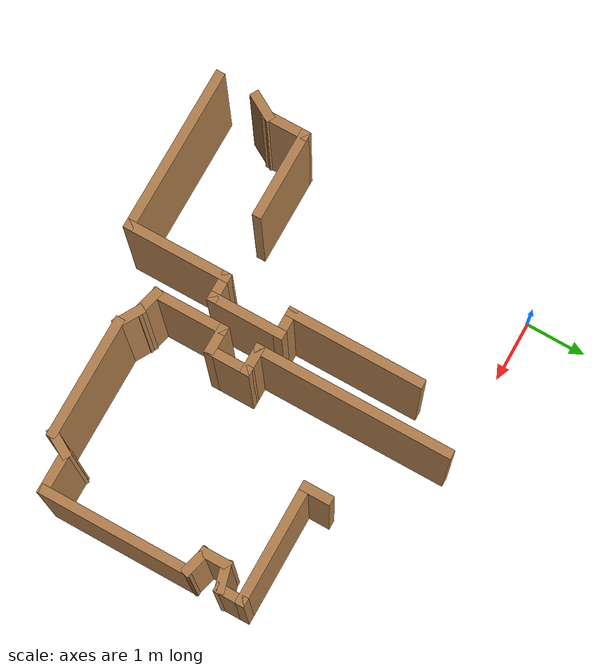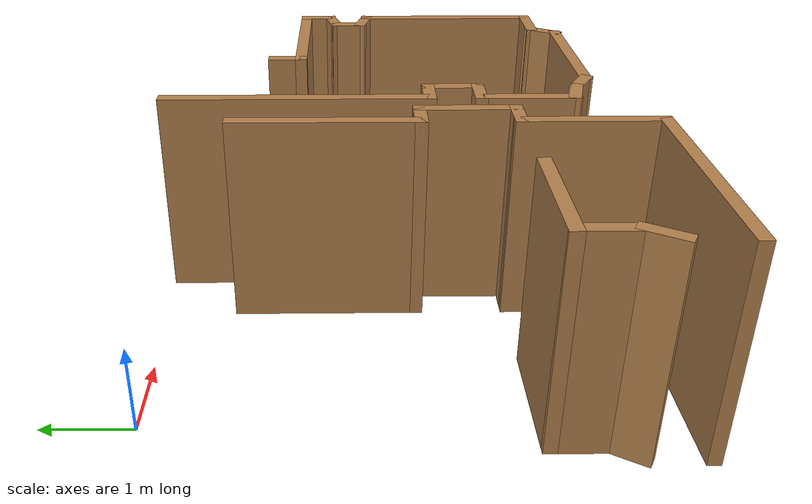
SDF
<sdf version="1.6">
 <model name="map_30">
  <link name="Wall_191">
   <pose>0.350366 -4.11681 0 0 -0 0</pose>
   <visual name="Wall_191_Visual">
    <pose>0 0 1.25 0 -0 0</pose>
    <geometry><box><size>1.5 0.15 2.5</size></box></geometry>
    <material>
     <script><uri>file://media/materials/scripts/gazebo.material</uri><name>Gazebo/Wood</name></script>
     <ambient>1 1 1 1</ambient>
     <shader type="pixel"/>
    </material>
    <meta><layer>0</layer></meta>
   </visual>
   <collision name="Wall_191_Collision">
    <pose>0 0 1.25 0 -0 0</pose>
    <geometry><box><size>1.5 0.15 2.5</size></box></geometry>
    <surface>
     <friction>
      <ode><mu>1</mu><mu2>1</mu2><fdir1>0 0 0</fdir1><slip1>0</slip1><slip2>0</slip2></ode>
      <torsional>
       <coefficient>1</coefficient>
       <patch_radius>0</patch_radius>
       <surface_radius>0</surface_radius>
       <use_patch_radius>1</use_patch_radius>
       <ode><slip>0</slip></ode>
      </torsional>
     </friction>
     <bounce><restitution_coefficient>0</restitution_coefficient><threshold>1e+06</threshold></bounce>
     <contact>
      <collide_without_contact>0</collide_without_contact>
      <collide_without_contact_bitmask>1</collide_without_contact_bitmask>
      <collide_bitmask>1</collide_bitmask>
      <ode>
       <soft_cfm>0</soft_cfm>
       <soft_erp>0.2</soft_erp>
       <kp>1e+13</kp>
       <kd>1</kd>
       <max_vel>0.01</max_vel>
       <min_depth>0</min_depth>
      </ode>
      <bullet>
       <split_impulse>1</split_impulse>
       <split_impulse_penetration_threshold>-0.01</split_impulse_penetration_threshold>
       <soft_cfm>0</soft_cfm>
       <soft_erp>0.2</soft_erp>
       <kp>1e+13</kp>
       <kd>1</kd>
      </bullet>
     </contact>
    </surface>
   </collision>
  </link>
  <link name="Wall_56">
   <pose>-0.324634 -4.41681 0 0 0 -1.5708</pose>
   <visual name="Wall_56_Visual">
    <pose>0 0 1.25 0 -0 0</pose>
    <geometry><box><size>0.75 0.15 2.5</size></box></geometry>
    <material>
     <script><uri>file://media/materials/scripts/gazebo.material</uri><name>Gazebo/Wood</name></script>
     <ambient>1 1 1 1</ambient>
     <shader type="pixel"/>
    </material>
    <meta><layer>0</layer></meta>
   </visual>
   <collision name="Wall_56_Collision">
    <pose>0 0 1.25 0 -0 0</pose>
    <geometry><box><size>0.75 0.15 2.5</size></box></geometry>
    <surface>
     <friction>
      <ode><mu>1</mu><mu2>1</mu2><fdir1>0 0 0</fdir1><slip1>0</slip1><slip2>0</slip2></ode>
      <torsional>
       <coefficient>1</coefficient>
       <patch_radius>0</patch_radius>
       <surface_radius>0</surface_radius>
       <use_patch_radius>1</use_patch_radius>
       <ode><slip>0</slip></ode>
      </torsional>
     </friction>
     <bounce><restitution_coefficient>0</restitution_coefficient><threshold>1e+06</threshold></bounce>
     <contact>
      <collide_without_contact>0</collide_without_contact>
      <collide_without_contact_bitmask>1</collide_without_contact_bitmask>
      <collide_bitmask>1</collide_bitmask>
      <ode>
       <soft_cfm>0</soft_cfm>
       <soft_erp>0.2</soft_erp>
       <kp>1e+13</kp>
       <kd>1</kd>
       <max_vel>0.01</max_vel>
       <min_depth>0</min_depth>
      </ode>
      <bullet>
       <split_impulse>1</split_impulse>
       <split_impulse_penetration_threshold>-0.01</split_impulse_penetration_threshold>
       <soft_cfm>0</soft_cfm>
       <soft_erp>0.2</soft_erp>
       <kp>1e+13</kp>
       <kd>1</kd>
      </bullet>
     </contact>
    </surface>
   </collision>
  </link>
  <link name="Wall_59">
   <pose>-0.412134 -4.86837 0 0 0 -2.0944</pose>
   <visual name="Wall_59_Visual">
    <pose>0 0 1.25 0 -0 0</pose>
    <geometry><box><size>0.5 0.15 2.5</size></box></geometry>
    <material>
     <script><uri>file://media/materials/scripts/gazebo.material</uri><name>Gazebo/Wood</name></script>
     <ambient>1 1 1 1</ambient>
     <shader type="pixel"/>
    </material>
    <meta><layer>0</layer></meta>
   </visual>
   <collision name="Wall_59_Collision">
    <pose>0 0 1.25 0 -0 0</pose>
    <geometry><box><size>0.5 0.15 2.5</size></box></geometry>
    <surface>
     <friction>
      <ode><mu>1</mu><mu2>1</mu2><fdir1>0 0 0</fdir1><slip1>0</slip1><slip2>0</slip2></ode>
      <torsional>
       <coefficient>1</coefficient>
       <patch_radius>0</patch_radius>
       <surface_radius>0</surface_radius>
       <use_patch_radius>1</use_patch_radius>
       <ode><slip>0</slip></ode>
      </torsional>
     </friction>
     <bounce><restitution_coefficient>0</restitution_coefficient><threshold>1e+06</threshold></bounce>
     <contact>
      <collide_without_contact>0</collide_without_contact>
      <collide_without_contact_bitmask>1</collide_without_contact_bitmask>
      <collide_bitmask>1</collide_bitmask>
      <ode>
       <soft_cfm>0</soft_cfm>
       <soft_erp>0.2</soft_erp>
       <kp>1e+13</kp>
       <kd>1</kd>
       <max_vel>0.01</max_vel>
       <min_depth>0</min_depth>
      </ode>
      <bullet>
       <split_impulse>1</split_impulse>
       <split_impulse_penetration_threshold>-0.01</split_impulse_penetration_threshold>
       <soft_cfm>0</soft_cfm>
       <soft_erp>0.2</soft_erp>
       <kp>1e+13</kp>
       <kd>1</kd>
      </bullet>
     </contact>
    </surface>
   </collision>
  </link>
  <link name="Wall_67">
   <pose>0.800366 -5.66618 0 0 -0 0</pose>
   <visual name="Wall_67_Visual">
    <pose>0 0 1.25 0 -0 0</pose>
    <geometry><box><size>2.75 0.15 2.5</size></box></geometry>
    <material>
     <script><uri>file://media/materials/scripts/gazebo.material</uri><name>Gazebo/Wood</name></script>
     <ambient>1 1 1 1</ambient>
     <shader type="pixel"/>
    </material>
    <meta><layer>0</layer></meta>
   </visual>
   <collision name="Wall_67_Collision">
    <pose>0 0 1.25 0 -0 0</pose>
    <geometry><box><size>2.75 0.15 2.5</size></box></geometry>
    <surface>
     <friction>
      <ode><mu>1</mu><mu2>1</mu2><fdir1>0 0 0</fdir1><slip1>0</slip1><slip2>0</slip2></ode>
      <torsional>
       <coefficient>1</coefficient>
       <patch_radius>0</patch_radius>
       <surface_radius>0</surface_radius>
       <use_patch_radius>1</use_patch_radius>
       <ode><slip>0</slip></ode>
      </torsional>
     </friction>
     <bounce><restitution_coefficient>0</restitution_coefficient><threshold>1e+06</threshold></bounce>
     <contact>
      <collide_without_contact>0</collide_without_contact>
      <collide_without_contact_bitmask>1</collide_without_contact_bitmask>
      <collide_bitmask>1</collide_bitmask>
      <ode>
       <soft_cfm>0</soft_cfm>
       <soft_erp>0.2</soft_erp>
       <kp>1e+13</kp>
       <kd>1</kd>
       <max_vel>0.01</max_vel>
       <min_depth>0</min_depth>
      </ode>
      <bullet>
       <split_impulse>1</split_impulse>
       <split_impulse_penetration_threshold>-0.01</split_impulse_penetration_threshold>
       <soft_cfm>0</soft_cfm>
       <soft_erp>0.2</soft_erp>
       <kp>1e+13</kp>
       <kd>1</kd>
      </bullet>
     </contact>
    </surface>
   </collision>
  </link>
  <link name="Wall_68">
   <pose>2.10037 -4.86618 0 0 -0 1.5708</pose>
   <visual name="Wall_68_Visual">
    <pose>0 0 1.25 0 -0 0</pose>
    <geometry><box><size>1.75 0.15 2.5</size></box></geometry>
    <material>
     <script><uri>file://media/materials/scripts/gazebo.material</uri><name>Gazebo/Wood</name></script>
     <ambient>1 1 1 1</ambient>
     <shader type="pixel"/>
    </material>
    <meta><layer>0</layer></meta>
   </visual>
   <collision name="Wall_68_Collision">
    <pose>0 0 1.25 0 -0 0</pose>
    <geometry><box><size>1.75 0.15 2.5</size></box></geometry>
    <surface>
     <friction>
      <ode><mu>1</mu><mu2>1</mu2><fdir1>0 0 0</fdir1><slip1>0</slip1><slip2>0</slip2></ode>
      <torsional>
       <coefficient>1</coefficient>
       <patch_radius>0</patch_radius>
       <surface_radius>0</surface_radius>
       <use_patch_radius>1</use_patch_radius>
       <ode><slip>0</slip></ode>
      </torsional>
     </friction>
     <bounce><restitution_coefficient>0</restitution_coefficient><threshold>1e+06</threshold></bounce>
     <contact>
      <collide_without_contact>0</collide_without_contact>
      <collide_without_contact_bitmask>1</collide_without_contact_bitmask>
      <collide_bitmask>1</collide_bitmask>
      <ode>
       <soft_cfm>0</soft_cfm>
       <soft_erp>0.2</soft_erp>
       <kp>1e+13</kp>
       <kd>1</kd>
       <max_vel>0.01</max_vel>
       <min_depth>0</min_depth>
      </ode>
      <bullet>
       <split_impulse>1</split_impulse>
       <split_impulse_penetration_threshold>-0.01</split_impulse_penetration_threshold>
       <soft_cfm>0</soft_cfm>
       <soft_erp>0.2</soft_erp>
       <kp>1e+13</kp>
       <kd>1</kd>
      </bullet>
     </contact>
    </surface>
   </collision>
  </link>
  <link name="Wall_69">
   <pose>2.27537 -4.06618 0 0 -0 0</pose>
   <visual name="Wall_69_Visual">
    <pose>0 0 1.25 0 -0 0</pose>
    <geometry><box><size>0.5 0.15 2.5</size></box></geometry>
    <material>
     <script><uri>file://media/materials/scripts/gazebo.material</uri><name>Gazebo/Wood</name></script>
     <ambient>1 1 1 1</ambient>
     <shader type="pixel"/>
    </material>
    <meta><layer>0</layer></meta>
   </visual>
   <collision name="Wall_69_Collision">
    <pose>0 0 1.25 0 -0 0</pose>
    <geometry><box><size>0.5 0.15 2.5</size></box></geometry>
    <surface>
     <friction>
      <ode><mu>1</mu><mu2>1</mu2><fdir1>0 0 0</fdir1><slip1>0</slip1><slip2>0</slip2></ode>
      <torsional>
       <coefficient>1</coefficient>
       <patch_radius>0</patch_radius>
       <surface_radius>0</surface_radius>
       <use_patch_radius>1</use_patch_radius>
       <ode><slip>0</slip></ode>
      </torsional>
     </friction>
     <bounce><restitution_coefficient>0</restitution_coefficient><threshold>1e+06</threshold></bounce>
     <contact>
      <collide_without_contact>0</collide_without_contact>
      <collide_without_contact_bitmask>1</collide_without_contact_bitmask>
      <collide_bitmask>1</collide_bitmask>
      <ode>
       <soft_cfm>0</soft_cfm>
       <soft_erp>0.2</soft_erp>
       <kp>1e+13</kp>
       <kd>1</kd>
       <max_vel>0.01</max_vel>
       <min_depth>0</min_depth>
      </ode>
      <bullet>
       <split_impulse>1</split_impulse>
       <split_impulse_penetration_threshold>-0.01</split_impulse_penetration_threshold>
       <soft_cfm>0</soft_cfm>
       <soft_erp>0.2</soft_erp>
       <kp>1e+13</kp>
       <kd>1</kd>
      </bullet>
     </contact>
    </surface>
   </collision>
  </link>
  <link name="Wall_70">
   <pose>2.45037 -3.51618 0 0 -0 1.5708</pose>
   <visual name="Wall_70_Visual">
    <pose>0 0 1.25 0 -0 0</pose>
    <geometry><box><size>1.25 0.15 2.5</size></box></geometry>
    <material>
     <script><uri>file://media/materials/scripts/gazebo.material</uri><name>Gazebo/Wood</name></script>
     <ambient>1 1 1 1</ambient>
     <shader type="pixel"/>
    </material>
    <meta><layer>0</layer></meta>
   </visual>
   <collision name="Wall_70_Collision">
    <pose>0 0 1.25 0 -0 0</pose>
    <geometry><box><size>1.25 0.15 2.5</size></box></geometry>
    <surface>
     <friction>
      <ode><mu>1</mu><mu2>1</mu2><fdir1>0 0 0</fdir1><slip1>0</slip1><slip2>0</slip2></ode>
      <torsional>
       <coefficient>1</coefficient>
       <patch_radius>0</patch_radius>
       <surface_radius>0</surface_radius>
       <use_patch_radius>1</use_patch_radius>
       <ode><slip>0</slip></ode>
      </torsional>
     </friction>
     <bounce><restitution_coefficient>0</restitution_coefficient><threshold>1e+06</threshold></bounce>
     <contact>
      <collide_without_contact>0</collide_without_contact>
      <collide_without_contact_bitmask>1</collide_without_contact_bitmask>
      <collide_bitmask>1</collide_bitmask>
      <ode>
       <soft_cfm>0</soft_cfm>
       <soft_erp>0.2</soft_erp>
       <kp>1e+13</kp>
       <kd>1</kd>
       <max_vel>0.01</max_vel>
       <min_depth>0</min_depth>
      </ode>
      <bullet>
       <split_impulse>1</split_impulse>
       <split_impulse_penetration_threshold>-0.01</split_impulse_penetration_threshold>
       <soft_cfm>0</soft_cfm>
       <soft_erp>0.2</soft_erp>
       <kp>1e+13</kp>
       <kd>1</kd>
      </bullet>
     </contact>
    </surface>
   </collision>
  </link>
  <link name="Wall_71">
   <pose>2.27537 -2.96618 0 0 -0 3.14159</pose>
   <visual name="Wall_71_Visual">
    <pose>0 0 1.25 0 -0 0</pose>
    <geometry><box><size>0.5 0.15 2.5</size></box></geometry>
    <material>
     <script><uri>file://media/materials/scripts/gazebo.material</uri><name>Gazebo/Wood</name></script>
     <ambient>1 1 1 1</ambient>
     <shader type="pixel"/>
    </material>
    <meta><layer>0</layer></meta>
   </visual>
   <collision name="Wall_71_Collision">
    <pose>0 0 1.25 0 -0 0</pose>
    <geometry><box><size>0.5 0.15 2.5</size></box></geometry>
    <surface>
     <friction>
      <ode><mu>1</mu><mu2>1</mu2><fdir1>0 0 0</fdir1><slip1>0</slip1><slip2>0</slip2></ode>
      <torsional>
       <coefficient>1</coefficient>
       <patch_radius>0</patch_radius>
       <surface_radius>0</surface_radius>
       <use_patch_radius>1</use_patch_radius>
       <ode><slip>0</slip></ode>
      </torsional>
     </friction>
     <bounce><restitution_coefficient>0</restitution_coefficient><threshold>1e+06</threshold></bounce>
     <contact>
      <collide_without_contact>0</collide_without_contact>
      <collide_without_contact_bitmask>1</collide_without_contact_bitmask>
      <collide_bitmask>1</collide_bitmask>
      <ode>
       <soft_cfm>0</soft_cfm>
       <soft_erp>0.2</soft_erp>
       <kp>1e+13</kp>
       <kd>1</kd>
       <max_vel>0.01</max_vel>
       <min_depth>0</min_depth>
      </ode>
      <bullet>
       <split_impulse>1</split_impulse>
       <split_impulse_penetration_threshold>-0.01</split_impulse_penetration_threshold>
       <soft_cfm>0</soft_cfm>
       <soft_erp>0.2</soft_erp>
       <kp>1e+13</kp>
       <kd>1</kd>
      </bullet>
     </contact>
    </surface>
   </collision>
  </link>
  <link name="Wall_72">
   <pose>2.10037 -1.91618 0 0 -0 1.5708</pose>
   <visual name="Wall_72_Visual">
    <pose>0 0 1.25 0 -0 0</pose>
    <geometry><box><size>2.25 0.15 2.5</size></box></geometry>
    <material>
     <script><uri>file://media/materials/scripts/gazebo.material</uri><name>Gazebo/Wood</name></script>
     <ambient>1 1 1 1</ambient>
     <shader type="pixel"/>
    </material>
    <meta><layer>0</layer></meta>
   </visual>
   <collision name="Wall_72_Collision">
    <pose>0 0 1.25 0 -0 0</pose>
    <geometry><box><size>2.25 0.15 2.5</size></box></geometry>
    <surface>
     <friction>
      <ode><mu>1</mu><mu2>1</mu2><fdir1>0 0 0</fdir1><slip1>0</slip1><slip2>0</slip2></ode>
      <torsional>
       <coefficient>1</coefficient>
       <patch_radius>0</patch_radius>
       <surface_radius>0</surface_radius>
       <use_patch_radius>1</use_patch_radius>
       <ode><slip>0</slip></ode>
      </torsional>
     </friction>
     <bounce><restitution_coefficient>0</restitution_coefficient><threshold>1e+06</threshold></bounce>
     <contact>
      <collide_without_contact>0</collide_without_contact>
      <collide_without_contact_bitmask>1</collide_without_contact_bitmask>
      <collide_bitmask>1</collide_bitmask>
      <ode>
       <soft_cfm>0</soft_cfm>
       <soft_erp>0.2</soft_erp>
       <kp>1e+13</kp>
       <kd>1</kd>
       <max_vel>0.01</max_vel>
       <min_depth>0</min_depth>
      </ode>
      <bullet>
       <split_impulse>1</split_impulse>
       <split_impulse_penetration_threshold>-0.01</split_impulse_penetration_threshold>
       <soft_cfm>0</soft_cfm>
       <soft_erp>0.2</soft_erp>
       <kp>1e+13</kp>
       <kd>1</kd>
      </bullet>
     </contact>
    </surface>
   </collision>
  </link>
  <link name="Wall_76">
   <pose>2.80037 -1.56618 0 0 0 -1.5708</pose>
   <visual name="Wall_76_Visual">
    <pose>0 0 1.25 0 -0 0</pose>
    <geometry><box><size>3.25 0.15 2.5</size></box></geometry>
    <material>
     <script><uri>file://media/materials/scripts/gazebo.material</uri><name>Gazebo/Wood</name></script>
     <ambient>1 1 1 1</ambient>
     <shader type="pixel"/>
    </material>
    <meta><layer>0</layer></meta>
   </visual>
   <collision name="Wall_76_Collision">
    <pose>0 0 1.25 0 -0 0</pose>
    <geometry><box><size>3.25 0.15 2.5</size></box></geometry>
    <surface>
     <friction>
      <ode><mu>1</mu><mu2>1</mu2><fdir1>0 0 0</fdir1><slip1>0</slip1><slip2>0</slip2></ode>
      <torsional>
       <coefficient>1</coefficient>
       <patch_radius>0</patch_radius>
       <surface_radius>0</surface_radius>
       <use_patch_radius>1</use_patch_radius>
       <ode><slip>0</slip></ode>
      </torsional>
     </friction>
     <bounce><restitution_coefficient>0</restitution_coefficient><threshold>1e+06</threshold></bounce>
     <contact>
      <collide_without_contact>0</collide_without_contact>
      <collide_without_contact_bitmask>1</collide_without_contact_bitmask>
      <collide_bitmask>1</collide_bitmask>
      <ode>
       <soft_cfm>0</soft_cfm>
       <soft_erp>0.2</soft_erp>
       <kp>1e+13</kp>
       <kd>1</kd>
       <max_vel>0.01</max_vel>
       <min_depth>0</min_depth>
      </ode>
      <bullet>
       <split_impulse>1</split_impulse>
       <split_impulse_penetration_threshold>-0.01</split_impulse_penetration_threshold>
       <soft_cfm>0</soft_cfm>
       <soft_erp>0.2</soft_erp>
       <kp>1e+13</kp>
       <kd>1</kd>
      </bullet>
     </contact>
    </surface>
   </collision>
  </link>
  <link name="Wall_77">
   <pose>2.97537 -3.11618 0 0 -0 0</pose>
   <visual name="Wall_77_Visual">
    <pose>0 0 1.25 0 -0 0</pose>
    <geometry><box><size>0.5 0.15 2.5</size></box></geometry>
    <material>
     <script><uri>file://media/materials/scripts/gazebo.material</uri><name>Gazebo/Wood</name></script>
     <ambient>1 1 1 1</ambient>
     <shader type="pixel"/>
    </material>
    <meta><layer>0</layer></meta>
   </visual>
   <collision name="Wall_77_Collision">
    <pose>0 0 1.25 0 -0 0</pose>
    <geometry><box><size>0.5 0.15 2.5</size></box></geometry>
    <surface>
     <friction>
      <ode><mu>1</mu><mu2>1</mu2><fdir1>0 0 0</fdir1><slip1>0</slip1><slip2>0</slip2></ode>
      <torsional>
       <coefficient>1</coefficient>
       <patch_radius>0</patch_radius>
       <surface_radius>0</surface_radius>
       <use_patch_radius>1</use_patch_radius>
       <ode><slip>0</slip></ode>
      </torsional>
     </friction>
     <bounce><restitution_coefficient>0</restitution_coefficient><threshold>1e+06</threshold></bounce>
     <contact>
      <collide_without_contact>0</collide_without_contact>
      <collide_without_contact_bitmask>1</collide_without_contact_bitmask>
      <collide_bitmask>1</collide_bitmask>
      <ode>
       <soft_cfm>0</soft_cfm>
       <soft_erp>0.2</soft_erp>
       <kp>1e+13</kp>
       <kd>1</kd>
       <max_vel>0.01</max_vel>
       <min_depth>0</min_depth>
      </ode>
      <bullet>
       <split_impulse>1</split_impulse>
       <split_impulse_penetration_threshold>-0.01</split_impulse_penetration_threshold>
       <soft_cfm>0</soft_cfm>
       <soft_erp>0.2</soft_erp>
       <kp>1e+13</kp>
       <kd>1</kd>
      </bullet>
     </contact>
    </surface>
   </collision>
  </link>
  <link name="Wall_84">
   <pose>3.15037 -3.41618 0 0 0 -1.5708</pose>
   <visual name="Wall_84_Visual">
    <pose>0 0 1.25 0 -0 0</pose>
    <geometry><box><size>0.75 0.15 2.5</size></box></geometry>
    <material>
     <script><uri>file://media/materials/scripts/gazebo.material</uri><name>Gazebo/Wood</name></script>
     <ambient>1 1 1 1</ambient>
     <shader type="pixel"/>
    </material>
    <meta><layer>0</layer></meta>
   </visual>
   <collision name="Wall_84_Collision">
    <pose>0 0 1.25 0 -0 0</pose>
    <geometry><box><size>0.75 0.15 2.5</size></box></geometry>
    <surface>
     <friction>
      <ode><mu>1</mu><mu2>1</mu2><fdir1>0 0 0</fdir1><slip1>0</slip1><slip2>0</slip2></ode>
      <torsional>
       <coefficient>1</coefficient>
       <patch_radius>0</patch_radius>
       <surface_radius>0</surface_radius>
       <use_patch_radius>1</use_patch_radius>
       <ode><slip>0</slip></ode>
      </torsional>
     </friction>
     <bounce><restitution_coefficient>0</restitution_coefficient><threshold>1e+06</threshold></bounce>
     <contact>
      <collide_without_contact>0</collide_without_contact>
      <collide_without_contact_bitmask>1</collide_without_contact_bitmask>
      <collide_bitmask>1</collide_bitmask>
      <ode>
       <soft_cfm>0</soft_cfm>
       <soft_erp>0.2</soft_erp>
       <kp>1e+13</kp>
       <kd>1</kd>
       <max_vel>0.01</max_vel>
       <min_depth>0</min_depth>
      </ode>
      <bullet>
       <split_impulse>1</split_impulse>
       <split_impulse_penetration_threshold>-0.01</split_impulse_penetration_threshold>
       <soft_cfm>0</soft_cfm>
       <soft_erp>0.2</soft_erp>
       <kp>1e+13</kp>
       <kd>1</kd>
      </bullet>
     </contact>
    </surface>
   </collision>
  </link>
  <link name="Wall_85">
   <pose>2.97537 -3.71618 0 0 -0 3.14159</pose>
   <visual name="Wall_85_Visual">
    <pose>0 0 1.25 0 -0 0</pose>
    <geometry><box><size>0.5 0.15 2.5</size></box></geometry>
    <material>
     <script><uri>file://media/materials/scripts/gazebo.material</uri><name>Gazebo/Wood</name></script>
     <ambient>1 1 1 1</ambient>
     <shader type="pixel"/>
    </material>
    <meta><layer>0</layer></meta>
   </visual>
   <collision name="Wall_85_Collision">
    <pose>0 0 1.25 0 -0 0</pose>
    <geometry><box><size>0.5 0.15 2.5</size></box></geometry>
    <surface>
     <friction>
      <ode><mu>1</mu><mu2>1</mu2><fdir1>0 0 0</fdir1><slip1>0</slip1><slip2>0</slip2></ode>
      <torsional>
       <coefficient>1</coefficient>
       <patch_radius>0</patch_radius>
       <surface_radius>0</surface_radius>
       <use_patch_radius>1</use_patch_radius>
       <ode><slip>0</slip></ode>
      </torsional>
     </friction>
     <bounce><restitution_coefficient>0</restitution_coefficient><threshold>1e+06</threshold></bounce>
     <contact>
      <collide_without_contact>0</collide_without_contact>
      <collide_without_contact_bitmask>1</collide_without_contact_bitmask>
      <collide_bitmask>1</collide_bitmask>
      <ode>
       <soft_cfm>0</soft_cfm>
       <soft_erp>0.2</soft_erp>
       <kp>1e+13</kp>
       <kd>1</kd>
       <max_vel>0.01</max_vel>
       <min_depth>0</min_depth>
      </ode>
      <bullet>
       <split_impulse>1</split_impulse>
       <split_impulse_penetration_threshold>-0.01</split_impulse_penetration_threshold>
       <soft_cfm>0</soft_cfm>
       <soft_erp>0.2</soft_erp>
       <kp>1e+13</kp>
       <kd>1</kd>
      </bullet>
     </contact>
    </surface>
   </collision>
  </link>
  <link name="Wall_86">
   <pose>2.80037 -4.26618 0 0 0 -1.5708</pose>
   <visual name="Wall_86_Visual">
    <pose>0 0 1.25 0 -0 0</pose>
    <geometry><box><size>1.25 0.15 2.5</size></box></geometry>
    <material>
     <script><uri>file://media/materials/scripts/gazebo.material</uri><name>Gazebo/Wood</name></script>
     <ambient>1 1 1 1</ambient>
     <shader type="pixel"/>
    </material>
    <meta><layer>0</layer></meta>
   </visual>
   <collision name="Wall_86_Collision">
    <pose>0 0 1.25 0 -0 0</pose>
    <geometry><box><size>1.25 0.15 2.5</size></box></geometry>
    <surface>
     <friction>
      <ode><mu>1</mu><mu2>1</mu2><fdir1>0 0 0</fdir1><slip1>0</slip1><slip2>0</slip2></ode>
      <torsional>
       <coefficient>1</coefficient>
       <patch_radius>0</patch_radius>
       <surface_radius>0</surface_radius>
       <use_patch_radius>1</use_patch_radius>
       <ode><slip>0</slip></ode>
      </torsional>
     </friction>
     <bounce><restitution_coefficient>0</restitution_coefficient><threshold>1e+06</threshold></bounce>
     <contact>
      <collide_without_contact>0</collide_without_contact>
      <collide_without_contact_bitmask>1</collide_without_contact_bitmask>
      <collide_bitmask>1</collide_bitmask>
      <ode>
       <soft_cfm>0</soft_cfm>
       <soft_erp>0.2</soft_erp>
       <kp>1e+13</kp>
       <kd>1</kd>
       <max_vel>0.01</max_vel>
       <min_depth>0</min_depth>
      </ode>
      <bullet>
       <split_impulse>1</split_impulse>
       <split_impulse_penetration_threshold>-0.01</split_impulse_penetration_threshold>
       <soft_cfm>0</soft_cfm>
       <soft_erp>0.2</soft_erp>
       <kp>1e+13</kp>
       <kd>1</kd>
      </bullet>
     </contact>
    </surface>
   </collision>
  </link>
  <link name="Wall_87">
   <pose>2.9694 -4.86148 0 0 0 -0.261799</pose>
   <visual name="Wall_87_Visual">
    <pose>0 0 1.25 0 -0 0</pose>
    <geometry><box><size>0.5 0.15 2.5</size></box></geometry>
    <material>
     <script><uri>file://media/materials/scripts/gazebo.material</uri><name>Gazebo/Wood</name></script>
     <ambient>1 1 1 1</ambient>
     <shader type="pixel"/>
    </material>
    <meta><layer>0</layer></meta>
   </visual>
   <collision name="Wall_87_Collision">
    <pose>0 0 1.25 0 -0 0</pose>
    <geometry><box><size>0.5 0.15 2.5</size></box></geometry>
    <surface>
     <friction>
      <ode><mu>1</mu><mu2>1</mu2><fdir1>0 0 0</fdir1><slip1>0</slip1><slip2>0</slip2></ode>
      <torsional>
       <coefficient>1</coefficient>
       <patch_radius>0</patch_radius>
       <surface_radius>0</surface_radius>
       <use_patch_radius>1</use_patch_radius>
       <ode><slip>0</slip></ode>
      </torsional>
     </friction>
     <bounce><restitution_coefficient>0</restitution_coefficient><threshold>1e+06</threshold></bounce>
     <contact>
      <collide_without_contact>0</collide_without_contact>
      <collide_without_contact_bitmask>1</collide_without_contact_bitmask>
      <collide_bitmask>1</collide_bitmask>
      <ode>
       <soft_cfm>0</soft_cfm>
       <soft_erp>0.2</soft_erp>
       <kp>1e+13</kp>
       <kd>1</kd>
       <max_vel>0.01</max_vel>
       <min_depth>0</min_depth>
      </ode>
      <bullet>
       <split_impulse>1</split_impulse>
       <split_impulse_penetration_threshold>-0.01</split_impulse_penetration_threshold>
       <soft_cfm>0</soft_cfm>
       <soft_erp>0.2</soft_erp>
       <kp>1e+13</kp>
       <kd>1</kd>
      </bullet>
     </contact>
    </surface>
   </collision>
  </link>
  <link name="Wall_88">
   <pose>3.28999 -4.99427 0 0 0 -0.523599</pose>
   <visual name="Wall_88_Visual">
    <pose>0 0 1.25 0 -0 0</pose>
    <geometry><box><size>0.5 0.15 2.5</size></box></geometry>
    <material>
     <script><uri>file://media/materials/scripts/gazebo.material</uri><name>Gazebo/Wood</name></script>
     <ambient>1 1 1 1</ambient>
     <shader type="pixel"/>
    </material>
    <meta><layer>0</layer></meta>
   </visual>
   <collision name="Wall_88_Collision">
    <pose>0 0 1.25 0 -0 0</pose>
    <geometry><box><size>0.5 0.15 2.5</size></box></geometry>
    <surface>
     <friction>
      <ode><mu>1</mu><mu2>1</mu2><fdir1>0 0 0</fdir1><slip1>0</slip1><slip2>0</slip2></ode>
      <torsional>
       <coefficient>1</coefficient>
       <patch_radius>0</patch_radius>
       <surface_radius>0</surface_radius>
       <use_patch_radius>1</use_patch_radius>
       <ode><slip>0</slip></ode>
      </torsional>
     </friction>
     <bounce><restitution_coefficient>0</restitution_coefficient><threshold>1e+06</threshold></bounce>
     <contact>
      <collide_without_contact>0</collide_without_contact>
      <collide_without_contact_bitmask>1</collide_without_contact_bitmask>
      <collide_bitmask>1</collide_bitmask>
      <ode>
       <soft_cfm>0</soft_cfm>
       <soft_erp>0.2</soft_erp>
       <kp>1e+13</kp>
       <kd>1</kd>
       <max_vel>0.01</max_vel>
       <min_depth>0</min_depth>
      </ode>
      <bullet>
       <split_impulse>1</split_impulse>
       <split_impulse_penetration_threshold>-0.01</split_impulse_penetration_threshold>
       <soft_cfm>0</soft_cfm>
       <soft_erp>0.2</soft_erp>
       <kp>1e+13</kp>
       <kd>1</kd>
      </bullet>
     </contact>
    </surface>
   </collision>
  </link>
  <link name="Wall_89">
   <pose>4.36655 -5.08177 0 0 -0 0</pose>
   <visual name="Wall_89_Visual">
    <pose>0 0 1.25 0 -0 0</pose>
    <geometry><box><size>2 0.15 2.5</size></box></geometry>
    <material>
     <script><uri>file://media/materials/scripts/gazebo.material</uri><name>Gazebo/Wood</name></script>
     <ambient>1 1 1 1</ambient>
     <shader type="pixel"/>
    </material>
    <meta><layer>0</layer></meta>
   </visual>
   <collision name="Wall_89_Collision">
    <pose>0 0 1.25 0 -0 0</pose>
    <geometry><box><size>2 0.15 2.5</size></box></geometry>
    <surface>
     <friction>
      <ode><mu>1</mu><mu2>1</mu2><fdir1>0 0 0</fdir1><slip1>0</slip1><slip2>0</slip2></ode>
      <torsional>
       <coefficient>1</coefficient>
       <patch_radius>0</patch_radius>
       <surface_radius>0</surface_radius>
       <use_patch_radius>1</use_patch_radius>
       <ode><slip>0</slip></ode>
      </torsional>
     </friction>
     <bounce><restitution_coefficient>0</restitution_coefficient><threshold>1e+06</threshold></bounce>
     <contact>
      <collide_without_contact>0</collide_without_contact>
      <collide_without_contact_bitmask>1</collide_without_contact_bitmask>
      <collide_bitmask>1</collide_bitmask>
      <ode>
       <soft_cfm>0</soft_cfm>
       <soft_erp>0.2</soft_erp>
       <kp>1e+13</kp>
       <kd>1</kd>
       <max_vel>0.01</max_vel>
       <min_depth>0</min_depth>
      </ode>
      <bullet>
       <split_impulse>1</split_impulse>
       <split_impulse_penetration_threshold>-0.01</split_impulse_penetration_threshold>
       <soft_cfm>0</soft_cfm>
       <soft_erp>0.2</soft_erp>
       <kp>1e+13</kp>
       <kd>1</kd>
      </bullet>
     </contact>
    </surface>
   </collision>
  </link>
  <link name="Wall_90">
   <pose>5.37905 -4.93021 0 0 -0 1.0472</pose>
   <visual name="Wall_90_Visual">
    <pose>0 0 1.25 0 -0 0</pose>
    <geometry><box><size>0.5 0.15 2.5</size></box></geometry>
    <material>
     <script><uri>file://media/materials/scripts/gazebo.material</uri><name>Gazebo/Wood</name></script>
     <ambient>1 1 1 1</ambient>
     <shader type="pixel"/>
    </material>
    <meta><layer>0</layer></meta>
   </visual>
   <collision name="Wall_90_Collision">
    <pose>0 0 1.25 0 -0 0</pose>
    <geometry><box><size>0.5 0.15 2.5</size></box></geometry>
    <surface>
     <friction>
      <ode><mu>1</mu><mu2>1</mu2><fdir1>0 0 0</fdir1><slip1>0</slip1><slip2>0</slip2></ode>
      <torsional>
       <coefficient>1</coefficient>
       <patch_radius>0</patch_radius>
       <surface_radius>0</surface_radius>
       <use_patch_radius>1</use_patch_radius>
       <ode><slip>0</slip></ode>
      </torsional>
     </friction>
     <bounce><restitution_coefficient>0</restitution_coefficient><threshold>1e+06</threshold></bounce>
     <contact>
      <collide_without_contact>0</collide_without_contact>
      <collide_without_contact_bitmask>1</collide_without_contact_bitmask>
      <collide_bitmask>1</collide_bitmask>
      <ode>
       <soft_cfm>0</soft_cfm>
       <soft_erp>0.2</soft_erp>
       <kp>1e+13</kp>
       <kd>1</kd>
       <max_vel>0.01</max_vel>
       <min_depth>0</min_depth>
      </ode>
      <bullet>
       <split_impulse>1</split_impulse>
       <split_impulse_penetration_threshold>-0.01</split_impulse_penetration_threshold>
       <soft_cfm>0</soft_cfm>
       <soft_erp>0.2</soft_erp>
       <kp>1e+13</kp>
       <kd>1</kd>
      </bullet>
     </contact>
    </surface>
   </collision>
  </link>
  <link name="Wall_91">
   <pose>5.76655 -4.77866 0 0 -0 0</pose>
   <visual name="Wall_91_Visual">
    <pose>0 0 1.25 0 -0 0</pose>
    <geometry><box><size>0.75 0.15 2.5</size></box></geometry>
    <material>
     <script><uri>file://media/materials/scripts/gazebo.material</uri><name>Gazebo/Wood</name></script>
     <ambient>1 1 1 1</ambient>
     <shader type="pixel"/>
    </material>
    <meta><layer>0</layer></meta>
   </visual>
   <collision name="Wall_91_Collision">
    <pose>0 0 1.25 0 -0 0</pose>
    <geometry><box><size>0.75 0.15 2.5</size></box></geometry>
    <surface>
     <friction>
      <ode><mu>1</mu><mu2>1</mu2><fdir1>0 0 0</fdir1><slip1>0</slip1><slip2>0</slip2></ode>
      <torsional>
       <coefficient>1</coefficient>
       <patch_radius>0</patch_radius>
       <surface_radius>0</surface_radius>
       <use_patch_radius>1</use_patch_radius>
       <ode><slip>0</slip></ode>
      </torsional>
     </friction>
     <bounce><restitution_coefficient>0</restitution_coefficient><threshold>1e+06</threshold></bounce>
     <contact>
      <collide_without_contact>0</collide_without_contact>
      <collide_without_contact_bitmask>1</collide_without_contact_bitmask>
      <collide_bitmask>1</collide_bitmask>
      <ode>
       <soft_cfm>0</soft_cfm>
       <soft_erp>0.2</soft_erp>
       <kp>1e+13</kp>
       <kd>1</kd>
       <max_vel>0.01</max_vel>
       <min_depth>0</min_depth>
      </ode>
      <bullet>
       <split_impulse>1</split_impulse>
       <split_impulse_penetration_threshold>-0.01</split_impulse_penetration_threshold>
       <soft_cfm>0</soft_cfm>
       <soft_erp>0.2</soft_erp>
       <kp>1e+13</kp>
       <kd>1</kd>
      </bullet>
     </contact>
    </surface>
   </collision>
  </link>
  <link name="Wall_92">
   <pose>6.06655 -3.60366 0 0 -0 1.5708</pose>
   <visual name="Wall_92_Visual">
    <pose>0 0 1.25 0 -0 0</pose>
    <geometry><box><size>2.5 0.15 2.5</size></box></geometry>
    <material>
     <script><uri>file://media/materials/scripts/gazebo.material</uri><name>Gazebo/Wood</name></script>
     <ambient>1 1 1 1</ambient>
     <shader type="pixel"/>
    </material>
    <meta><layer>0</layer></meta>
   </visual>
   <collision name="Wall_92_Collision">
    <pose>0 0 1.25 0 -0 0</pose>
    <geometry><box><size>2.5 0.15 2.5</size></box></geometry>
    <surface>
     <friction>
      <ode><mu>1</mu><mu2>1</mu2><fdir1>0 0 0</fdir1><slip1>0</slip1><slip2>0</slip2></ode>
      <torsional>
       <coefficient>1</coefficient>
       <patch_radius>0</patch_radius>
       <surface_radius>0</surface_radius>
       <use_patch_radius>1</use_patch_radius>
       <ode><slip>0</slip></ode>
      </torsional>
     </friction>
     <bounce><restitution_coefficient>0</restitution_coefficient><threshold>1e+06</threshold></bounce>
     <contact>
      <collide_without_contact>0</collide_without_contact>
      <collide_without_contact_bitmask>1</collide_without_contact_bitmask>
      <collide_bitmask>1</collide_bitmask>
      <ode>
       <soft_cfm>0</soft_cfm>
       <soft_erp>0.2</soft_erp>
       <kp>1e+13</kp>
       <kd>1</kd>
       <max_vel>0.01</max_vel>
       <min_depth>0</min_depth>
      </ode>
      <bullet>
       <split_impulse>1</split_impulse>
       <split_impulse_penetration_threshold>-0.01</split_impulse_penetration_threshold>
       <soft_cfm>0</soft_cfm>
       <soft_erp>0.2</soft_erp>
       <kp>1e+13</kp>
       <kd>1</kd>
      </bullet>
     </contact>
    </surface>
   </collision>
  </link>
  <link name="Wall_93">
   <pose>5.89751 -2.38337 0 0 -0 2.87979</pose>
   <visual name="Wall_93_Visual">
    <pose>0 0 1.25 0 -0 0</pose>
    <geometry><box><size>0.5 0.15 2.5</size></box></geometry>
    <material>
     <script><uri>file://media/materials/scripts/gazebo.material</uri><name>Gazebo/Wood</name></script>
     <ambient>1 1 1 1</ambient>
     <shader type="pixel"/>
    </material>
    <meta><layer>0</layer></meta>
   </visual>
   <collision name="Wall_93_Collision">
    <pose>0 0 1.25 0 -0 0</pose>
    <geometry><box><size>0.5 0.15 2.5</size></box></geometry>
    <surface>
     <friction>
      <ode><mu>1</mu><mu2>1</mu2><fdir1>0 0 0</fdir1><slip1>0</slip1><slip2>0</slip2></ode>
      <torsional>
       <coefficient>1</coefficient>
       <patch_radius>0</patch_radius>
       <surface_radius>0</surface_radius>
       <use_patch_radius>1</use_patch_radius>
       <ode><slip>0</slip></ode>
      </torsional>
     </friction>
     <bounce><restitution_coefficient>0</restitution_coefficient><threshold>1e+06</threshold></bounce>
     <contact>
      <collide_without_contact>0</collide_without_contact>
      <collide_without_contact_bitmask>1</collide_without_contact_bitmask>
      <collide_bitmask>1</collide_bitmask>
      <ode>
       <soft_cfm>0</soft_cfm>
       <soft_erp>0.2</soft_erp>
       <kp>1e+13</kp>
       <kd>1</kd>
       <max_vel>0.01</max_vel>
       <min_depth>0</min_depth>
      </ode>
      <bullet>
       <split_impulse>1</split_impulse>
       <split_impulse_penetration_threshold>-0.01</split_impulse_penetration_threshold>
       <soft_cfm>0</soft_cfm>
       <soft_erp>0.2</soft_erp>
       <kp>1e+13</kp>
       <kd>1</kd>
      </bullet>
     </contact>
    </surface>
   </collision>
  </link>
  <link name="Wall_94">
   <pose>5.72848 -2.16307 0 0 -0 1.5708</pose>
   <visual name="Wall_94_Visual">
    <pose>0 0 1.25 0 -0 0</pose>
    <geometry><box><size>0.5 0.15 2.5</size></box></geometry>
    <material>
     <script><uri>file://media/materials/scripts/gazebo.material</uri><name>Gazebo/Wood</name></script>
     <ambient>1 1 1 1</ambient>
     <shader type="pixel"/>
    </material>
    <meta><layer>0</layer></meta>
   </visual>
   <collision name="Wall_94_Collision">
    <pose>0 0 1.25 0 -0 0</pose>
    <geometry><box><size>0.5 0.15 2.5</size></box></geometry>
    <surface>
     <friction>
      <ode><mu>1</mu><mu2>1</mu2><fdir1>0 0 0</fdir1><slip1>0</slip1><slip2>0</slip2></ode>
      <torsional>
       <coefficient>1</coefficient>
       <patch_radius>0</patch_radius>
       <surface_radius>0</surface_radius>
       <use_patch_radius>1</use_patch_radius>
       <ode><slip>0</slip></ode>
      </torsional>
     </friction>
     <bounce><restitution_coefficient>0</restitution_coefficient><threshold>1e+06</threshold></bounce>
     <contact>
      <collide_without_contact>0</collide_without_contact>
      <collide_without_contact_bitmask>1</collide_without_contact_bitmask>
      <collide_bitmask>1</collide_bitmask>
      <ode>
       <soft_cfm>0</soft_cfm>
       <soft_erp>0.2</soft_erp>
       <kp>1e+13</kp>
       <kd>1</kd>
       <max_vel>0.01</max_vel>
       <min_depth>0</min_depth>
      </ode>
      <bullet>
       <split_impulse>1</split_impulse>
       <split_impulse_penetration_threshold>-0.01</split_impulse_penetration_threshold>
       <soft_cfm>0</soft_cfm>
       <soft_erp>0.2</soft_erp>
       <kp>1e+13</kp>
       <kd>1</kd>
      </bullet>
     </contact>
    </surface>
   </collision>
  </link>
  <link name="Wall_95">
   <pose>5.89751 -1.94278 0 0 -0 0.261799</pose>
   <visual name="Wall_95_Visual">
    <pose>0 0 1.25 0 -0 0</pose>
    <geometry><box><size>0.5 0.15 2.5</size></box></geometry>
    <material>
     <script><uri>file://media/materials/scripts/gazebo.material</uri><name>Gazebo/Wood</name></script>
     <ambient>1 1 1 1</ambient>
     <shader type="pixel"/>
    </material>
    <meta><layer>0</layer></meta>
   </visual>
   <collision name="Wall_95_Collision">
    <pose>0 0 1.25 0 -0 0</pose>
    <geometry><box><size>0.5 0.15 2.5</size></box></geometry>
    <surface>
     <friction>
      <ode><mu>1</mu><mu2>1</mu2><fdir1>0 0 0</fdir1><slip1>0</slip1><slip2>0</slip2></ode>
      <torsional>
       <coefficient>1</coefficient>
       <patch_radius>0</patch_radius>
       <surface_radius>0</surface_radius>
       <use_patch_radius>1</use_patch_radius>
       <ode><slip>0</slip></ode>
      </torsional>
     </friction>
     <bounce><restitution_coefficient>0</restitution_coefficient><threshold>1e+06</threshold></bounce>
     <contact>
      <collide_without_contact>0</collide_without_contact>
      <collide_without_contact_bitmask>1</collide_without_contact_bitmask>
      <collide_bitmask>1</collide_bitmask>
      <ode>
       <soft_cfm>0</soft_cfm>
       <soft_erp>0.2</soft_erp>
       <kp>1e+13</kp>
       <kd>1</kd>
       <max_vel>0.01</max_vel>
       <min_depth>0</min_depth>
      </ode>
      <bullet>
       <split_impulse>1</split_impulse>
       <split_impulse_penetration_threshold>-0.01</split_impulse_penetration_threshold>
       <soft_cfm>0</soft_cfm>
       <soft_erp>0.2</soft_erp>
       <kp>1e+13</kp>
       <kd>1</kd>
      </bullet>
     </contact>
    </surface>
   </collision>
  </link>
  <link name="Wall_96">
   <pose>6.06655 -1.72249 0 0 -0 1.5708</pose>
   <visual name="Wall_96_Visual">
    <pose>0 0 1.25 0 -0 0</pose>
    <geometry><box><size>0.5 0.15 2.5</size></box></geometry>
    <material>
     <script><uri>file://media/materials/scripts/gazebo.material</uri><name>Gazebo/Wood</name></script>
     <ambient>1 1 1 1</ambient>
     <shader type="pixel"/>
    </material>
    <meta><layer>0</layer></meta>
   </visual>
   <collision name="Wall_96_Collision">
    <pose>0 0 1.25 0 -0 0</pose>
    <geometry><box><size>0.5 0.15 2.5</size></box></geometry>
    <surface>
     <friction>
      <ode><mu>1</mu><mu2>1</mu2><fdir1>0 0 0</fdir1><slip1>0</slip1><slip2>0</slip2></ode>
      <torsional>
       <coefficient>1</coefficient>
       <patch_radius>0</patch_radius>
       <surface_radius>0</surface_radius>
       <use_patch_radius>1</use_patch_radius>
       <ode><slip>0</slip></ode>
      </torsional>
     </friction>
     <bounce><restitution_coefficient>0</restitution_coefficient><threshold>1e+06</threshold></bounce>
     <contact>
      <collide_without_contact>0</collide_without_contact>
      <collide_without_contact_bitmask>1</collide_without_contact_bitmask>
      <collide_bitmask>1</collide_bitmask>
      <ode>
       <soft_cfm>0</soft_cfm>
       <soft_erp>0.2</soft_erp>
       <kp>1e+13</kp>
       <kd>1</kd>
       <max_vel>0.01</max_vel>
       <min_depth>0</min_depth>
      </ode>
      <bullet>
       <split_impulse>1</split_impulse>
       <split_impulse_penetration_threshold>-0.01</split_impulse_penetration_threshold>
       <soft_cfm>0</soft_cfm>
       <soft_erp>0.2</soft_erp>
       <kp>1e+13</kp>
       <kd>1</kd>
      </bullet>
     </contact>
    </surface>
   </collision>
  </link>
  <link name="Wall_97">
   <pose>5.14155 -1.54749 0 0 -0 3.14159</pose>
   <visual name="Wall_97_Visual">
    <pose>0 0 1.25 0 -0 0</pose>
    <geometry><box><size>2 0.15 2.5</size></box></geometry>
    <material>
     <script><uri>file://media/materials/scripts/gazebo.material</uri><name>Gazebo/Wood</name></script>
     <ambient>1 1 1 1</ambient>
     <shader type="pixel"/>
    </material>
    <meta><layer>0</layer></meta>
   </visual>
   <collision name="Wall_97_Collision">
    <pose>0 0 1.25 0 -0 0</pose>
    <geometry><box><size>2 0.15 2.5</size></box></geometry>
    <surface>
     <friction>
      <ode><mu>1</mu><mu2>1</mu2><fdir1>0 0 0</fdir1><slip1>0</slip1><slip2>0</slip2></ode>
      <torsional>
       <coefficient>1</coefficient>
       <patch_radius>0</patch_radius>
       <surface_radius>0</surface_radius>
       <use_patch_radius>1</use_patch_radius>
       <ode><slip>0</slip></ode>
      </torsional>
     </friction>
     <bounce><restitution_coefficient>0</restitution_coefficient><threshold>1e+06</threshold></bounce>
     <contact>
      <collide_without_contact>0</collide_without_contact>
      <collide_without_contact_bitmask>1</collide_without_contact_bitmask>
      <collide_bitmask>1</collide_bitmask>
      <ode>
       <soft_cfm>0</soft_cfm>
       <soft_erp>0.2</soft_erp>
       <kp>1e+13</kp>
       <kd>1</kd>
       <max_vel>0.01</max_vel>
       <min_depth>0</min_depth>
      </ode>
      <bullet>
       <split_impulse>1</split_impulse>
       <split_impulse_penetration_threshold>-0.01</split_impulse_penetration_threshold>
       <soft_cfm>0</soft_cfm>
       <soft_erp>0.2</soft_erp>
       <kp>1e+13</kp>
       <kd>1</kd>
      </bullet>
     </contact>
    </surface>
   </collision>
  </link>
  <link name="Wall_98">
   <pose>4.21655 -1.37249 0 0 -0 1.5708</pose>
   <visual name="Wall_98_Visual">
    <pose>0 0 1.25 0 -0 0</pose>
    <geometry><box><size>0.5 0.15 2.5</size></box></geometry>
    <material>
     <script><uri>file://media/materials/scripts/gazebo.material</uri><name>Gazebo/Wood</name></script>
     <ambient>1 1 1 1</ambient>
     <shader type="pixel"/>
    </material>
    <meta><layer>0</layer></meta>
   </visual>
   <collision name="Wall_98_Collision">
    <pose>0 0 1.25 0 -0 0</pose>
    <geometry><box><size>0.5 0.15 2.5</size></box></geometry>
    <surface>
     <friction>
      <ode><mu>1</mu><mu2>1</mu2><fdir1>0 0 0</fdir1><slip1>0</slip1><slip2>0</slip2></ode>
      <torsional>
       <coefficient>1</coefficient>
       <patch_radius>0</patch_radius>
       <surface_radius>0</surface_radius>
       <use_patch_radius>1</use_patch_radius>
       <ode><slip>0</slip></ode>
      </torsional>
     </friction>
     <bounce><restitution_coefficient>0</restitution_coefficient><threshold>1e+06</threshold></bounce>
     <contact>
      <collide_without_contact>0</collide_without_contact>
      <collide_without_contact_bitmask>1</collide_without_contact_bitmask>
      <collide_bitmask>1</collide_bitmask>
      <ode>
       <soft_cfm>0</soft_cfm>
       <soft_erp>0.2</soft_erp>
       <kp>1e+13</kp>
       <kd>1</kd>
       <max_vel>0.01</max_vel>
       <min_depth>0</min_depth>
      </ode>
      <bullet>
       <split_impulse>1</split_impulse>
       <split_impulse_penetration_threshold>-0.01</split_impulse_penetration_threshold>
       <soft_cfm>0</soft_cfm>
       <soft_erp>0.2</soft_erp>
       <kp>1e+13</kp>
       <kd>1</kd>
      </bullet>
     </contact>
    </surface>
   </collision>
  </link>
  <static>1</static>
 </model>
</sdf>
